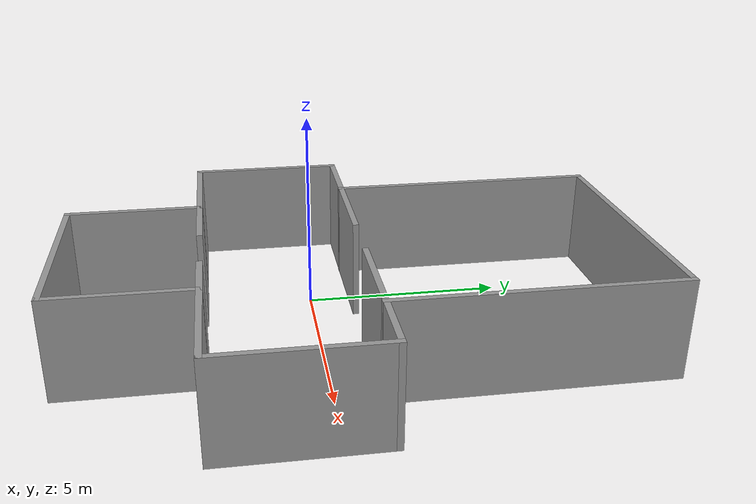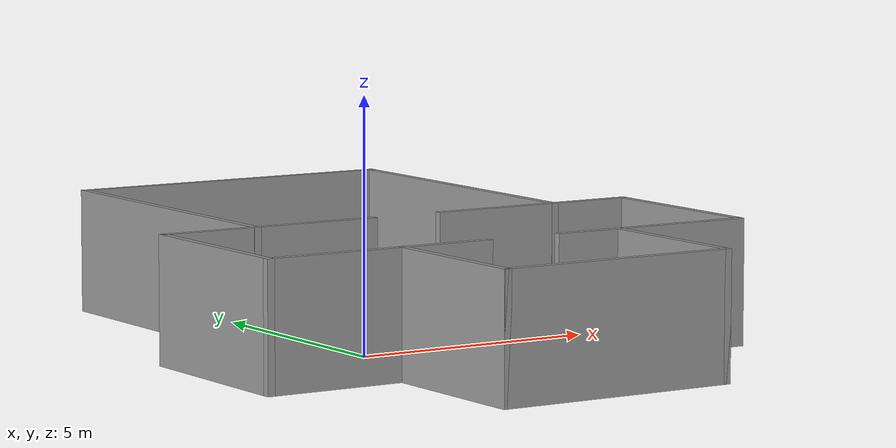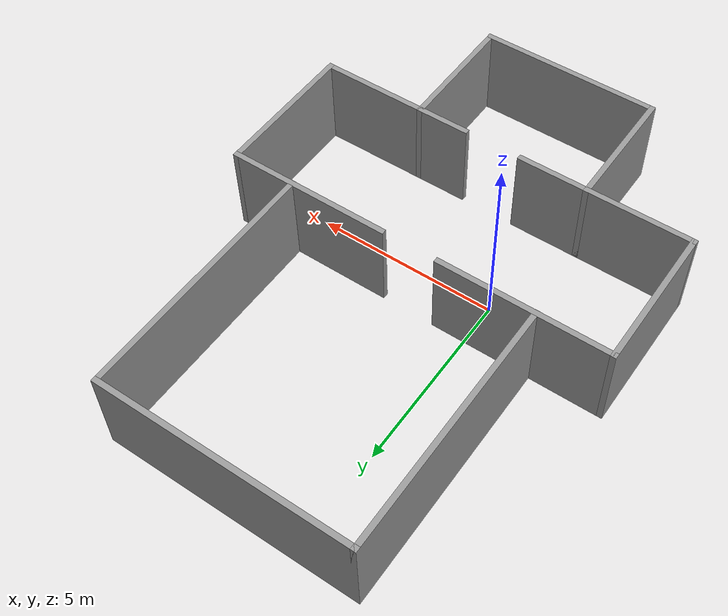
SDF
<?xml version='1.0'?>
<sdf version='1.7'>
  <model name='conference_room3'>
    <pose>1.53252 0.904278 0 0 -0 0</pose>
    <link name='Wall_0'>
      <collision name='Wall_0_Collision'>
        <geometry>
          <box>
            <size>4.97355 0.15 2.5</size>
          </box>
        </geometry>
        <pose>0 0 1.25 0 -0 0</pose>
      </collision>
      <visual name='Wall_0_Visual'>
        <pose>0 0 1.25 0 -0 0</pose>
        <geometry>
          <box>
            <size>4.97355 0.15 2.5</size>
          </box>
        </geometry>
        <material>
          <script>
            <uri>file://media/materials/scripts/gazebo.material</uri>
            <name>Gazebo/Grey</name>
          </script>
          <ambient>1 1 1 1</ambient>
        </material>
        <meta>
          <layer>0</layer>
        </meta>
      </visual>
      <pose>0.006612 -7.02097 0 0 -0 0</pose>
    </link>
    <link name='Wall_10'>
      <collision name='Wall_10_Collision'>
        <geometry>
          <box>
            <size>4 0.15 2.5</size>
          </box>
        </geometry>
        <pose>0 0 1.25 0 -0 0</pose>
      </collision>
      <visual name='Wall_10_Visual'>
        <pose>0 0 1.25 0 -0 0</pose>
        <geometry>
          <box>
            <size>4 0.15 2.5</size>
          </box>
        </geometry>
        <material>
          <script>
            <uri>file://media/materials/scripts/gazebo.material</uri>
            <name>Gazebo/Grey</name>
          </script>
          <ambient>1 1 1 1</ambient>
        </material>
        <meta>
          <layer>0</layer>
        </meta>
      </visual>
      <pose>-5.26839 -1.74597 0 0 -0 1.5708</pose>
    </link>
    <link name='Wall_11'>
      <collision name='Wall_11_Collision'>
        <geometry>
          <box>
            <size>4.75 0.15 2.5</size>
          </box>
        </geometry>
        <pose>0 0 1.25 0 -0 0</pose>
      </collision>
      <visual name='Wall_11_Visual'>
        <pose>0 0 1.25 0 -0 0</pose>
        <geometry>
          <box>
            <size>4.75 0.15 2.5</size>
          </box>
        </geometry>
        <material>
          <script>
            <uri>file://media/materials/scripts/gazebo.material</uri>
            <name>Gazebo/Grey</name>
          </script>
          <ambient>1 1 1 1</ambient>
        </material>
        <meta>
          <layer>0</layer>
        </meta>
      </visual>
      <pose>-2.96839 0.179027 0 0 -0 0</pose>
    </link>
    <link name='Wall_13'>
      <collision name='Wall_13_Collision'>
        <geometry>
          <box>
            <size>3 0.15 2.5</size>
          </box>
        </geometry>
        <pose>0 0 1.25 0 -0 0</pose>
      </collision>
      <visual name='Wall_13_Visual'>
        <pose>0 0 1.25 0 -0 0</pose>
        <geometry>
          <box>
            <size>3 0.15 2.5</size>
          </box>
        </geometry>
        <material>
          <script>
            <uri>file://media/materials/scripts/gazebo.material</uri>
            <name>Gazebo/Grey</name>
          </script>
          <ambient>1 1 1 1</ambient>
        </material>
        <meta>
          <layer>0</layer>
        </meta>
      </visual>
      <pose>3.84339 -3.67097 0 0 -0 0</pose>
    </link>
    <link name='Wall_14'>
      <collision name='Wall_14_Collision'>
        <geometry>
          <box>
            <size>4 0.15 2.5</size>
          </box>
        </geometry>
        <pose>0 0 1.25 0 -0 0</pose>
      </collision>
      <visual name='Wall_14_Visual'>
        <pose>0 0 1.25 0 -0 0</pose>
        <geometry>
          <box>
            <size>4 0.15 2.5</size>
          </box>
        </geometry>
        <material>
          <script>
            <uri>file://media/materials/scripts/gazebo.material</uri>
            <name>Gazebo/Grey</name>
          </script>
          <ambient>1 1 1 1</ambient>
        </material>
        <meta>
          <layer>0</layer>
        </meta>
      </visual>
      <pose>5.26839 -1.74597 0 0 -0 1.5708</pose>
    </link>
    <link name='Wall_15'>
      <collision name='Wall_15_Collision'>
        <geometry>
          <box>
            <size>4.5 0.15 2.5</size>
          </box>
        </geometry>
        <pose>0 0 1.25 0 -0 0</pose>
      </collision>
      <visual name='Wall_15_Visual'>
        <pose>0 0 1.25 0 -0 0</pose>
        <geometry>
          <box>
            <size>4.5 0.15 2.5</size>
          </box>
        </geometry>
        <material>
          <script>
            <uri>file://media/materials/scripts/gazebo.material</uri>
            <name>Gazebo/Grey</name>
          </script>
          <ambient>1 1 1 1</ambient>
        </material>
        <meta>
          <layer>0</layer>
        </meta>
      </visual>
      <pose>3.09339 0.179027 0 0 -0 3.14159</pose>
    </link>
    <link name='Wall_2'>
      <collision name='Wall_2_Collision'>
        <geometry>
          <box>
            <size>3.5 0.15 2.5</size>
          </box>
        </geometry>
        <pose>0 0 1.25 0 -0 0</pose>
      </collision>
      <visual name='Wall_2_Visual'>
        <pose>0 0 1.25 0 -0 0</pose>
        <geometry>
          <box>
            <size>3.5 0.15 2.5</size>
          </box>
        </geometry>
        <material>
          <script>
            <uri>file://media/materials/scripts/gazebo.material</uri>
            <name>Gazebo/Grey</name>
          </script>
          <ambient>1 1 1 1</ambient>
        </material>
        <meta>
          <layer>0</layer>
        </meta>
      </visual>
      <pose>-2.41839 -5.34597 0 0 -0 1.5708</pose>
    </link>
    <link name='Wall_22'>
      <collision name='Wall_22_Collision'>
        <geometry>
          <box>
            <size>7 0.15 2.5</size>
          </box>
        </geometry>
        <pose>0 0 1.25 0 -0 0</pose>
      </collision>
      <visual name='Wall_22_Visual'>
        <pose>0 0 1.25 0 -0 0</pose>
        <geometry>
          <box>
            <size>7 0.15 2.5</size>
          </box>
        </geometry>
        <material>
          <script>
            <uri>file://media/materials/scripts/gazebo.material</uri>
            <name>Gazebo/Grey</name>
          </script>
          <ambient>1 1 1 1</ambient>
        </material>
        <meta>
          <layer>0</layer>
        </meta>
      </visual>
      <pose>-3.28329 3.59597 0 0 -0 1.5708</pose>
    </link>
    <link name='Wall_23'>
      <collision name='Wall_23_Collision'>
        <geometry>
          <box>
            <size>7 0.15 2.5</size>
          </box>
        </geometry>
        <pose>0 0 1.25 0 -0 0</pose>
      </collision>
      <visual name='Wall_23_Visual'>
        <pose>0 0 1.25 0 -0 0</pose>
        <geometry>
          <box>
            <size>7 0.15 2.5</size>
          </box>
        </geometry>
        <material>
          <script>
            <uri>file://media/materials/scripts/gazebo.material</uri>
            <name>Gazebo/Grey</name>
          </script>
          <ambient>1 1 1 1</ambient>
        </material>
        <meta>
          <layer>0</layer>
        </meta>
      </visual>
      <pose>0.141706 7.02097 0 0 -0 0</pose>
    </link>
    <link name='Wall_24'>
      <collision name='Wall_24_Collision'>
        <geometry>
          <box>
            <size>7 0.15 2.5</size>
          </box>
        </geometry>
        <pose>0 0 1.25 0 -0 0</pose>
      </collision>
      <visual name='Wall_24_Visual'>
        <pose>0 0 1.25 0 -0 0</pose>
        <geometry>
          <box>
            <size>7 0.15 2.5</size>
          </box>
        </geometry>
        <material>
          <script>
            <uri>file://media/materials/scripts/gazebo.material</uri>
            <name>Gazebo/Grey</name>
          </script>
          <ambient>1 1 1 1</ambient>
        </material>
        <meta>
          <layer>0</layer>
        </meta>
      </visual>
      <pose>3.5667 3.59597 0 0 -0 -1.5708</pose>
    </link>
    <link name='Wall_4'>
      <collision name='Wall_4_Collision'>
        <geometry>
          <box>
            <size>3.5 0.15 2.5</size>
          </box>
        </geometry>
        <pose>0 0 1.25 0 -0 0</pose>
      </collision>
      <visual name='Wall_4_Visual'>
        <pose>0 0 1.25 0 -0 0</pose>
        <geometry>
          <box>
            <size>3.5 0.15 2.5</size>
          </box>
        </geometry>
        <material>
          <script>
            <uri>file://media/materials/scripts/gazebo.material</uri>
            <name>Gazebo/Grey</name>
          </script>
          <ambient>1 1 1 1</ambient>
        </material>
        <meta>
          <layer>0</layer>
        </meta>
      </visual>
      <pose>2.41839 -5.34597 0 0 -0 1.5708</pose>
    </link>
    <link name='Wall_5'>
      <collision name='Wall_5_Collision'>
        <geometry>
          <box>
            <size>1.5 0.15 2.5</size>
          </box>
        </geometry>
        <pose>0 0 1.25 0 -0 0</pose>
      </collision>
      <visual name='Wall_5_Visual'>
        <pose>0 0 1.25 0 -0 0</pose>
        <geometry>
          <box>
            <size>1.5 0.15 2.5</size>
          </box>
        </geometry>
        <material>
          <script>
            <uri>file://media/materials/scripts/gazebo.material</uri>
            <name>Gazebo/Grey</name>
          </script>
          <ambient>1 1 1 1</ambient>
        </material>
        <meta>
          <layer>0</layer>
        </meta>
      </visual>
      <pose>1.74339 -3.67097 0 0 -0 3.14159</pose>
    </link>
    <link name='Wall_7'>
      <collision name='Wall_7_Collision'>
        <geometry>
          <box>
            <size>2 0.15 2.5</size>
          </box>
        </geometry>
        <pose>0 0 1.25 0 -0 0</pose>
      </collision>
      <visual name='Wall_7_Visual'>
        <pose>0 0 1.25 0 -0 0</pose>
        <geometry>
          <box>
            <size>2 0.15 2.5</size>
          </box>
        </geometry>
        <material>
          <script>
            <uri>file://media/materials/scripts/gazebo.material</uri>
            <name>Gazebo/Grey</name>
          </script>
          <ambient>1 1 1 1</ambient>
        </material>
        <meta>
          <layer>0</layer>
        </meta>
      </visual>
      <pose>-1.49339 -3.67097 0 0 -0 0</pose>
    </link>
    <link name='Wall_9'>
      <collision name='Wall_9_Collision'>
        <geometry>
          <box>
            <size>3 0.15 2.5</size>
          </box>
        </geometry>
        <pose>0 0 1.25 0 -0 0</pose>
      </collision>
      <visual name='Wall_9_Visual'>
        <pose>0 0 1.25 0 -0 0</pose>
        <geometry>
          <box>
            <size>3 0.15 2.5</size>
          </box>
        </geometry>
        <material>
          <script>
            <uri>file://media/materials/scripts/gazebo.material</uri>
            <name>Gazebo/Grey</name>
          </script>
          <ambient>1 1 1 1</ambient>
        </material>
        <meta>
          <layer>0</layer>
        </meta>
      </visual>
      <pose>-3.84339 -3.67097 0 0 -0 3.14159</pose>
    </link>
    <static>1</static>
  </model>
</sdf>
